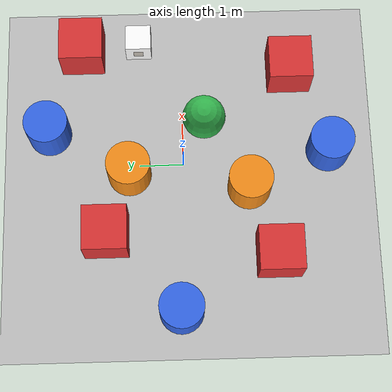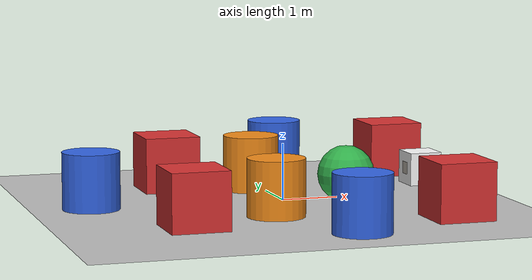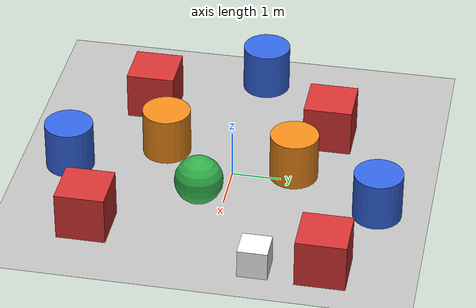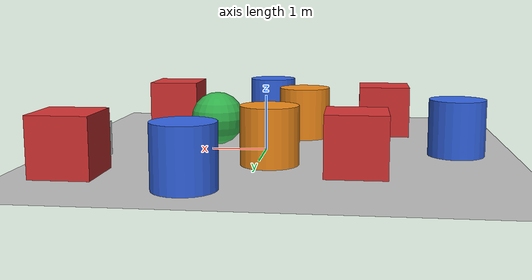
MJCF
<?xml version="1.0" encoding="UTF-8"?>
<mujoco model="empty">
  <compiler angle="radian" />
  <option timestep="0.002" gravity="0 0 -9.81" />
  <default>
    <geom friction="1.0 0.8 0.01" condim="4" />
    <joint damping="0.1" frictionloss="0.01" />
  </default>

  <asset>
    <texture name="tag_tex" type="2d" file="tag36h11_0.png" />
    <material name="tag_mat" texture="tag_tex" texuniform="false" specular="0" shininess="0" />
  </asset>

  <worldbody>
    <body name="ground_plane" pos="0 0 0">
      <inertial mass="1" pos="0 0 0" diaginertia="1 1 1" />
      <geom type="plane" size="100 100 0.1" friction="1.0 0.8 0.01" rgba="0.75 0.75 0.75 1" />
    </body>

    <body name="tag_box" pos="3 1 0.3">
      <inertial mass="1" pos="0 0 0" diaginertia="0.06 0.06 0.06" />
      <geom type="box" size="0.3 0.3 0.3" rgba="1 1 1 1" />
      <geom name="tag_face" type="plane" size="0.1125 0.1125 0.01" pos="-0.301 0 0" xyaxes="0 -1 0 0 0 1" material="tag_mat" contype="0" conaffinity="0" />
    </body>

    <body name="box" pos="2.8417219933466216 2.3179857352986479 0.49999999990199806">
      <inertial mass="1" pos="0 0 0" diaginertia="0.16666 0.16666 0.16666" />
      <geom type="box" size="0.5 0.5 0.5" rgba="0.85 0.2 0.2 1" />
    </body>
    <body name="box_0" pos="-1.655056733151445 1.7780978645303196 0.49999999990199806">
      <inertial mass="1" pos="0 0 0" diaginertia="0.16666 0.16666 0.16666" />
      <geom type="box" size="0.5 0.5 0.5" rgba="0.85 0.2 0.2 1" />
    </body>
    <body name="box_1" pos="2.2530130565463509 -2.5291287914817251 0.49999999990199806">
      <inertial mass="1" pos="0 0 0" diaginertia="0.16666 0.16666 0.16666" />
      <geom type="box" size="0.5 0.5 0.5" rgba="0.85 0.2 0.2 1" />
    </body>
    <body name="box_2" pos="-2.1994093670324379 -2.0956478539805325 0.49999999990199806">
      <inertial mass="1" pos="0 0 0" diaginertia="0.16666 0.16666 0.16666" />
      <geom type="box" size="0.5 0.5 0.5" rgba="0.85 0.2 0.2 1" />
    </body>

    <body name="sphere" pos="1.0 -0.5 0.5">
      <inertial mass="1" pos="0 0 0" diaginertia="0.1 0.1 0.1" />
      <geom type="sphere" size="0.5" rgba="0.2 0.7 0.3 1" />
    </body>

    <body name="cone" pos="-0.6 -1.5 0.5">
      <inertial mass="1" pos="0 0 0" diaginertia="0.075 0.075 0.075" />
      <geom type="cylinder" size="0.5 0.5" rgba="0.95 0.55 0.1 1" />
    </body>
    <body name="cone_0" pos="-0.21110311954607025 1.2444863752518083 0.49999999993296756">
      <inertial mass="1" pos="0 0 0" diaginertia="0.075 0.075 0.075" />
      <geom type="cylinder" size="0.5 0.5" rgba="0.95 0.55 0.1 1" />
    </body>

    <body name="cylinder" pos="-3.4181480821354935 0.11779292196676421 0.49999942638036005">
      <inertial mass="1" pos="0 0 0" diaginertia="0.14580 0.14580 0.125" />
      <geom type="cylinder" size="0.5 0.5" rgba="0.2 0.4 0.9 1" />
    </body>
    <body name="cylinder_0" pos="0.81116111290291459 3.0972589908019872 0.49999942638036005">
      <inertial mass="1" pos="0 0 0" diaginertia="0.14580 0.14580 0.125" />
      <geom type="cylinder" size="0.5 0.5" rgba="0.2 0.4 0.9 1" />
    </body>
    <body name="cylinder_1" pos="0.25970265554276373 -3.3643063096518571 0.49999942638036005">
      <inertial mass="1" pos="0 0 0" diaginertia="0.14580 0.14580 0.125" />
      <geom type="cylinder" size="0.5 0.5" rgba="0.2 0.4 0.9 1" />
    </body>
  </worldbody>
  <actuator />
</mujoco>
